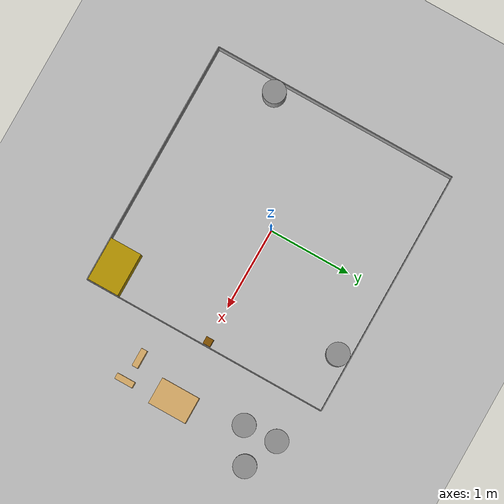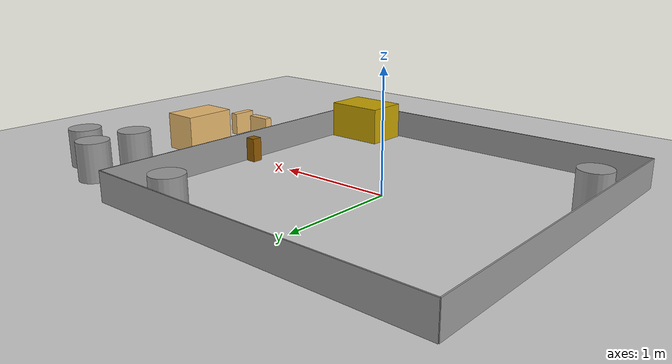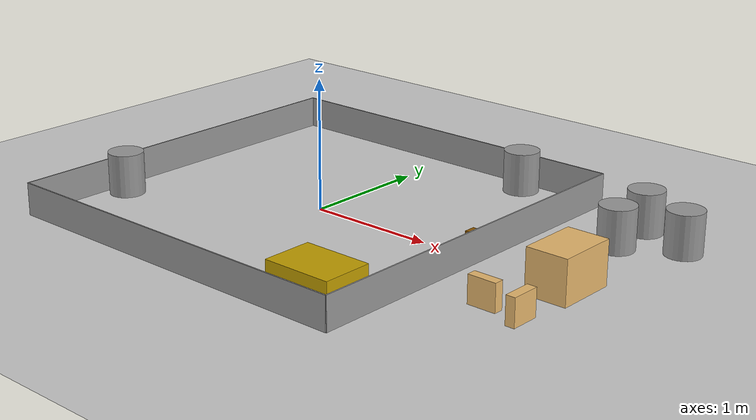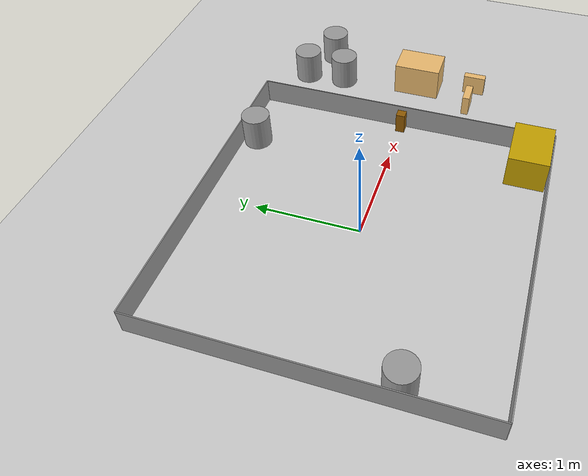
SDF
<sdf version="1.4">
 <world name="default">
  <light name="sun" type="directional">
   <pose>0 0 10 0 -0 0</pose>
   <diffuse>0.8 0.8 0.8 1</diffuse>
   <specular>0.2 0.2 0.2 1</specular>
   <attenuation>
    <range>1000</range>
    <constant>0.9</constant>
    <linear>0.01</linear>
    <quadratic>0.001</quadratic>
   </attenuation>
   <direction>-0.5 0.1 -0.9</direction>
  </light>
  <model name="ground_plane">
   <static>1</static>
   <link name="link">
    <collision name="collision">
     <geometry><plane><normal>0 0 1</normal><size>100 100</size></plane></geometry>
     <surface><friction><ode><mu>100</mu><mu2>50</mu2></ode></friction></surface>
    </collision>
    <visual name="visual">
     <cast_shadows>0</cast_shadows>
     <geometry><plane><normal>0 0 1</normal><size>100 100</size></plane></geometry>
     <material>
      <script><uri>file://media/materials/scripts/gazebo.material</uri><name>Gazebo/Grey</name></script>
     </material>
    </visual>
    <velocity_decay><linear>0</linear><angular>0</angular></velocity_decay>
   </link>
  </model>
  <physics type="ode">
   <max_step_size>0.01</max_step_size>
   <real_time_factor>1</real_time_factor>
   <real_time_update_rate>100</real_time_update_rate>
   <gravity>0 0 -9.8</gravity>
  </physics>
  <scene><ambient>0.4 0.4 0.4 1</ambient><background>0.7 0.7 0.7 1</background><shadows>1</shadows></scene>
  <model name="3by3AgileXSquare">
   <static>1</static>
   <link name="link_3_clone">
    <pose>0 0 0.5 0 -0 0</pose>
    <visual name="visual">
     <pose>0 1.5 -0.375 0 -0 0</pose>
     <geometry><box><size>3 0.01 0.25</size></box></geometry>
     <material>
      <script><uri>file://media/materials/scripts/gazebo.material</uri><name>Gazebo/Grey</name></script>
      <ambient>0.3 0.3 0.3 1</ambient>
      <diffuse>0.7 0.7 0.7 1</diffuse>
      <specular>0.01 0.01 0.01 1</specular>
      <emissive>0 0 0 1</emissive>
     </material>
    </visual>
    <collision name="collision">
     <pose>0 1.5 -0.375 0 -0 0</pose>
     <geometry><box><size>3 0.01 0.25</size></box></geometry>
     <surface>
      <friction><ode><mu>1</mu><mu2>1</mu2></ode></friction>
      <bounce><restitution_coefficient>0</restitution_coefficient><threshold>1e+06</threshold></bounce>
      <contact>
       <ode>
        <soft_cfm>0</soft_cfm>
        <soft_erp>0.2</soft_erp>
        <kp>1e+13</kp>
        <kd>1</kd>
        <max_vel>0.01</max_vel>
        <min_depth>0</min_depth>
       </ode>
      </contact>
     </surface>
    </collision>
   </link>
   <link name="link_3_clone_0">
    <pose>0 0 0.5 0 -0 0</pose>
    <visual name="visual">
     <pose>-1.5 0 -0.375 0 -0 0</pose>
     <geometry><box><size>0.01 3 0.25</size></box></geometry>
     <material>
      <script><uri>file://media/materials/scripts/gazebo.material</uri><name>Gazebo/Grey</name></script>
      <ambient>0.3 0.3 0.3 1</ambient>
      <diffuse>0.7 0.7 0.7 1</diffuse>
      <specular>0.01 0.01 0.01 1</specular>
      <emissive>0 0 0 1</emissive>
     </material>
    </visual>
    <collision name="collision">
     <pose>-1.5 0 -0.375 0 -0 0</pose>
     <geometry><box><size>0.01 3 0.25</size></box></geometry>
     <surface>
      <friction><ode><mu>1</mu><mu2>1</mu2></ode></friction>
      <bounce><restitution_coefficient>0</restitution_coefficient><threshold>1e+06</threshold></bounce>
      <contact>
       <ode>
        <soft_cfm>0</soft_cfm>
        <soft_erp>0.2</soft_erp>
        <kp>1e+13</kp>
        <kd>1</kd>
        <max_vel>0.01</max_vel>
        <min_depth>0</min_depth>
       </ode>
      </contact>
     </surface>
    </collision>
   </link>
   <link name="link_3_clone_1">
    <pose>0 0 0.5 0 -0 0</pose>
    <visual name="visual">
     <pose>1.5 0 -0.375 0 -0 0</pose>
     <geometry><box><size>0.01 3 0.25</size></box></geometry>
     <material>
      <script><uri>file://media/materials/scripts/gazebo.material</uri><name>Gazebo/Grey</name></script>
      <ambient>0.3 0.3 0.3 1</ambient>
      <diffuse>0.7 0.7 0.7 1</diffuse>
      <specular>0.01 0.01 0.01 1</specular>
      <emissive>0 0 0 1</emissive>
     </material>
    </visual>
    <collision name="collision">
     <pose>1.5 0 -0.375 0 -0 0</pose>
     <geometry><box><size>0.01 3 0.25</size></box></geometry>
     <surface>
      <friction><ode><mu>1</mu><mu2>1</mu2></ode></friction>
      <bounce><restitution_coefficient>0</restitution_coefficient><threshold>1e+06</threshold></bounce>
      <contact>
       <ode>
        <soft_cfm>0</soft_cfm>
        <soft_erp>0.2</soft_erp>
        <kp>1e+13</kp>
        <kd>1</kd>
        <max_vel>0.01</max_vel>
        <min_depth>0</min_depth>
       </ode>
      </contact>
     </surface>
    </collision>
   </link>
   <link name="link_3_clone_2">
    <pose>0 0 0.5 0 -0 0</pose>
    <visual name="visual">
     <pose>0 -1.5 -0.375 0 -0 0</pose>
     <geometry><box><size>3 0.01 0.25</size></box></geometry>
     <material>
      <script><uri>file://media/materials/scripts/gazebo.material</uri><name>Gazebo/Grey</name></script>
      <ambient>0.3 0.3 0.3 1</ambient>
      <diffuse>0.7 0.7 0.7 1</diffuse>
      <specular>0.01 0.01 0.01 1</specular>
      <emissive>0 0 0 1</emissive>
     </material>
    </visual>
    <collision name="collision">
     <pose>0 -1.5 -0.375 0 -0 0</pose>
     <geometry><box><size>3 0.01 0.25</size></box></geometry>
     <surface>
      <friction><ode><mu>1</mu><mu2>1</mu2></ode></friction>
      <bounce><restitution_coefficient>0</restitution_coefficient><threshold>1e+06</threshold></bounce>
      <contact>
       <ode>
        <soft_cfm>0</soft_cfm>
        <soft_erp>0.2</soft_erp>
        <kp>1e+13</kp>
        <kd>1</kd>
        <max_vel>0.01</max_vel>
        <min_depth>0</min_depth>
       </ode>
      </contact>
     </surface>
    </collision>
   </link>
   <pose>-0.002845 -0.019186 0 0 -0 0</pose>
  </model>
  <model name="4by4">
   <static>1</static>
   <link name="link_1">
    <pose>0 0 0.104 0 -0 0</pose>
    <visual name="visual">
     <geometry><box><size>0.0889 0.0889 0.208</size></box></geometry>
     <material>
      <script><uri>file://media/materials/scripts/gazebo.material</uri><name>Gazebo/Grey</name></script>
      <ambient>0.561 0.349 0.008 1</ambient>
      <diffuse>0.7 0.7 0.7 1</diffuse>
      <specular>0.01 0.01 0.01 1</specular>
      <emissive>0.561 0.349 0.008 1</emissive>
     </material>
    </visual>
    <collision name="collision">
     <geometry><box><size>0.0889 0.0889 0.208</size></box></geometry>
     <surface>
      <friction><ode><mu>1</mu><mu2>1</mu2></ode></friction>
      <bounce><restitution_coefficient>0</restitution_coefficient><threshold>1e+06</threshold></bounce>
      <contact>
       <ode>
        <soft_cfm>0</soft_cfm>
        <soft_erp>0.2</soft_erp>
        <kp>1e+13</kp>
        <kd>1</kd>
        <max_vel>0.01</max_vel>
        <min_depth>0</min_depth>
       </ode>
      </contact>
     </surface>
    </collision>
   </link>
   <pose>1.44053 0.003074 0 0 -0 0</pose>
  </model>
  <model name="bucket">
   <static>1</static>
   <link name="link_5">
    <pose>0 0 0.1651 0 -0 0</pose>
    <visual name="visual">
     <geometry><cylinder><radius>0.1372</radius><length>0.3302</length></cylinder></geometry>
     <material>
      <script><uri>file://media/materials/scripts/gazebo.material</uri><name>Gazebo/Grey</name></script>
      <ambient>0.3 0.3 0.3 1</ambient>
      <diffuse>0.7 0.7 0.7 1</diffuse>
      <specular>0.01 0.01 0.01 1</specular>
      <emissive>0.933 0.933 0.925 1</emissive>
     </material>
    </visual>
    <collision name="collision">
     <geometry><cylinder><radius>0.1372</radius><length>0.3302</length></cylinder></geometry>
     <surface>
      <friction><ode><mu>1</mu><mu2>1</mu2></ode></friction>
      <bounce><restitution_coefficient>0</restitution_coefficient><threshold>1e+06</threshold></bounce>
      <contact>
       <ode>
        <soft_cfm>0</soft_cfm>
        <soft_erp>0.2</soft_erp>
        <kp>1e+13</kp>
        <kd>1</kd>
        <max_vel>0.01</max_vel>
        <min_depth>0</min_depth>
       </ode>
      </contact>
     </surface>
    </collision>
   </link>
   <pose>2.03363 1.2137 0 0 -0 0</pose>
  </model>
  <model name="bucket_0">
   <static>1</static>
   <link name="link_5">
    <pose>0 0 0.1651 0 -0 0</pose>
    <visual name="visual">
     <geometry><cylinder><radius>0.1372</radius><length>0.3302</length></cylinder></geometry>
     <material>
      <script><uri>file://media/materials/scripts/gazebo.material</uri><name>Gazebo/Grey</name></script>
      <ambient>0.3 0.3 0.3 1</ambient>
      <diffuse>0.7 0.7 0.7 1</diffuse>
      <specular>0.01 0.01 0.01 1</specular>
      <emissive>0.933 0.933 0.925 1</emissive>
     </material>
    </visual>
    <collision name="collision">
     <geometry><cylinder><radius>0.1372</radius><length>0.3302</length></cylinder></geometry>
     <surface>
      <friction><ode><mu>1</mu><mu2>1</mu2></ode></friction>
      <bounce><restitution_coefficient>0</restitution_coefficient><threshold>1e+06</threshold></bounce>
      <contact>
       <ode>
        <soft_cfm>0</soft_cfm>
        <soft_erp>0.2</soft_erp>
        <kp>1e+13</kp>
        <kd>1</kd>
        <max_vel>0.01</max_vel>
        <min_depth>0</min_depth>
       </ode>
      </contact>
     </surface>
    </collision>
   </link>
   <pose>2.05646 0.810061 0 0 -0 0</pose>
  </model>
  <model name="bucket_1">
   <static>1</static>
   <link name="link_5">
    <pose>0 0 0.1651 0 -0 0</pose>
    <visual name="visual">
     <geometry><cylinder><radius>0.1372</radius><length>0.3302</length></cylinder></geometry>
     <material>
      <script><uri>file://media/materials/scripts/gazebo.material</uri><name>Gazebo/Grey</name></script>
      <ambient>0.3 0.3 0.3 1</ambient>
      <diffuse>0.7 0.7 0.7 1</diffuse>
      <specular>0.01 0.01 0.01 1</specular>
      <emissive>0.933 0.933 0.925 1</emissive>
     </material>
    </visual>
    <collision name="collision">
     <geometry><cylinder><radius>0.1372</radius><length>0.3302</length></cylinder></geometry>
     <surface>
      <friction><ode><mu>1</mu><mu2>1</mu2></ode></friction>
      <bounce><restitution_coefficient>0</restitution_coefficient><threshold>1e+06</threshold></bounce>
      <contact>
       <ode>
        <soft_cfm>0</soft_cfm>
        <soft_erp>0.2</soft_erp>
        <kp>1e+13</kp>
        <kd>1</kd>
        <max_vel>0.01</max_vel>
        <min_depth>0</min_depth>
       </ode>
      </contact>
     </surface>
    </collision>
   </link>
   <pose>2.45029 1.03948 0 0 -0 0</pose>
  </model>
  <model name="permbucket">
   <static>1</static>
   <link name="link_5">
    <pose>0 0 0.1651 0 -0 0</pose>
    <visual name="visual">
     <geometry><cylinder><radius>0.1372</radius><length>0.3302</length></cylinder></geometry>
     <material>
      <script><uri>file://media/materials/scripts/gazebo.material</uri><name>Gazebo/Grey</name></script>
      <ambient>0.533 0.541 0.522 1</ambient>
      <diffuse>0.7 0.7 0.7 1</diffuse>
      <specular>0.01 0.01 0.01 1</specular>
      <emissive>0.18 0.204 0.212 1</emissive>
     </material>
    </visual>
    <collision name="collision">
     <geometry><cylinder><radius>0.1372</radius><length>0.3302</length></cylinder></geometry>
     <surface>
      <friction><ode><mu>1</mu><mu2>1</mu2></ode></friction>
      <bounce><restitution_coefficient>0</restitution_coefficient><threshold>1e+06</threshold></bounce>
      <contact><ode><soft_cfm>0</soft_cfm><soft_erp>0.2</soft_erp></ode></contact>
     </surface>
    </collision>
   </link>
   <pose>0.856676 1.3356 0 0 -0 0</pose>
  </model>
  <model name="permbucket_0">
   <static>1</static>
   <link name="link_5">
    <pose>0 0 0.1651 0 -0 0</pose>
    <visual name="visual">
     <geometry><cylinder><radius>0.1372</radius><length>0.3302</length></cylinder></geometry>
     <material>
      <script><uri>file://media/materials/scripts/gazebo.material</uri><name>Gazebo/Grey</name></script>
      <ambient>0.533 0.541 0.522 1</ambient>
      <diffuse>0.7 0.7 0.7 1</diffuse>
      <specular>0.01 0.01 0.01 1</specular>
      <emissive>0.18 0.204 0.212 1</emissive>
     </material>
    </visual>
    <collision name="collision">
     <geometry><cylinder><radius>0.1372</radius><length>0.3302</length></cylinder></geometry>
     <surface>
      <friction><ode><mu>1</mu><mu2>1</mu2></ode></friction>
      <bounce><restitution_coefficient>0</restitution_coefficient><threshold>1e+06</threshold></bounce>
      <contact><ode><soft_cfm>0</soft_cfm><soft_erp>0.2</soft_erp></ode></contact>
     </surface>
    </collision>
   </link>
   <pose>-1.35708 -0.72127 0 0 -0 0</pose>
  </model>
  <model name="cornerbox">
   <static>1</static>
   <link name="link_1">
    <pose>0 0 0.16 0 -0 0</pose>
    <visual name="visual">
     <geometry><box><size>0.5271 0.381 0.34</size></box></geometry>
     <material>
      <script><uri>file://media/materials/scripts/gazebo.material</uri><name>Gazebo/Grey</name></script>
      <ambient>0.769 0.627 0 1</ambient>
      <diffuse>0.7 0.7 0.7 1</diffuse>
      <specular>0.01 0.01 0.01 1</specular>
      <emissive>0.914 0.725 0.431 1</emissive>
     </material>
    </visual>
    <collision name="collision">
     <geometry><box><size>0.5271 0.381 0.32</size></box></geometry>
     <surface>
      <friction><ode><mu>1</mu><mu2>1</mu2></ode></friction>
      <bounce><restitution_coefficient>0</restitution_coefficient><threshold>1e+06</threshold></bounce>
      <contact><ode><soft_cfm>0</soft_cfm><soft_erp>0.2</soft_erp></ode></contact>
     </surface>
    </collision>
   </link>
   <pose>1.22707 -1.31391 0 0 -0 0</pose>
  </model>
  <model name="tempbox_big_turned">
   <static>1</static>
   <link name="link_1">
    <pose>0 0 0.16 0 -0 0</pose>
    <visual name="visual">
     <geometry><box><size>0.32 0.468 0.34</size></box></geometry>
     <material>
      <script><uri>file://media/materials/scripts/gazebo.material</uri><name>Gazebo/Grey</name></script>
      <ambient>0.914 0.725 0.431 1</ambient>
      <diffuse>0.7 0.7 0.7 1</diffuse>
      <specular>0.01 0.01 0.01 1</specular>
      <emissive>0.914 0.725 0.431 1</emissive>
     </material>
    </visual>
    <collision name="collision">
     <geometry><box><size>0.32 0.468 0.32</size></box></geometry>
     <surface>
      <friction><ode><mu>1</mu><mu2>1</mu2></ode></friction>
      <bounce><restitution_coefficient>0</restitution_coefficient><threshold>1e+06</threshold></bounce>
      <contact><ode><soft_cfm>0</soft_cfm><soft_erp>0.2</soft_erp></ode></contact>
     </surface>
    </collision>
   </link>
   <pose>2.2011 -0.0052 0 0 -0 0</pose>
  </model>
  <model name="tempbox_small">
   <static>1</static>
   <link name="link_1">
    <pose>0 0 0.104 0 -0 0</pose>
    <visual name="visual">
     <geometry><box><size>0.072 0.222 0.208</size></box></geometry>
     <material>
      <script><uri>file://media/materials/scripts/gazebo.material</uri><name>Gazebo/Grey</name></script>
      <ambient>0.914 0.725 0.431 1</ambient>
      <diffuse>0.7 0.7 0.7 1</diffuse>
      <specular>0.01 0.01 0.01 1</specular>
      <emissive>0.914 0.725 0.431 1</emissive>
     </material>
    </visual>
    <collision name="collision">
     <geometry><box><size>0.072 0.222 0.208</size></box></geometry>
     <surface>
      <friction><ode><mu>1</mu><mu2>1</mu2></ode></friction>
      <bounce><restitution_coefficient>0</restitution_coefficient><threshold>1e+06</threshold></bounce>
      <contact><ode><soft_cfm>0</soft_cfm><soft_erp>0.2</soft_erp></ode></contact>
     </surface>
    </collision>
   </link>
   <pose>2.27419 -0.597595 0 0 -0 0</pose>
  </model>
  <model name="tempbox_small_turned">
   <static>1</static>
   <link name="link_1">
    <pose>0 0 0.104 0 -0 0</pose>
    <visual name="visual">
     <geometry><box><size>0.222 0.072 0.208</size></box></geometry>
     <material>
      <script><uri>file://media/materials/scripts/gazebo.material</uri><name>Gazebo/Grey</name></script>
      <ambient>0.914 0.725 0.431 1</ambient>
      <diffuse>0.7 0.7 0.7 1</diffuse>
      <specular>0.01 0.01 0.01 1</specular>
      <emissive>0.914 0.725 0.431 1</emissive>
     </material>
    </visual>
    <collision name="collision">
     <geometry><box><size>0.222 0.072 0.208</size></box></geometry>
     <surface>
      <friction><ode><mu>1</mu><mu2>1</mu2></ode></friction>
      <bounce><restitution_coefficient>0</restitution_coefficient><threshold>1e+06</threshold></bounce>
      <contact><ode><soft_cfm>0</soft_cfm><soft_erp>0.2</soft_erp></ode></contact>
     </surface>
    </collision>
   </link>
   <pose>1.97784 -0.575471 0 0 -0 0</pose>
  </model>
 </world>
</sdf>
